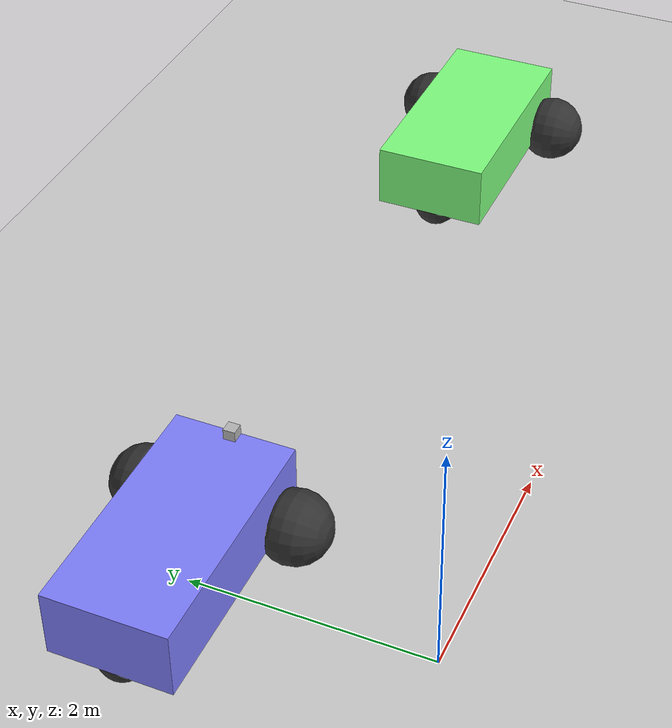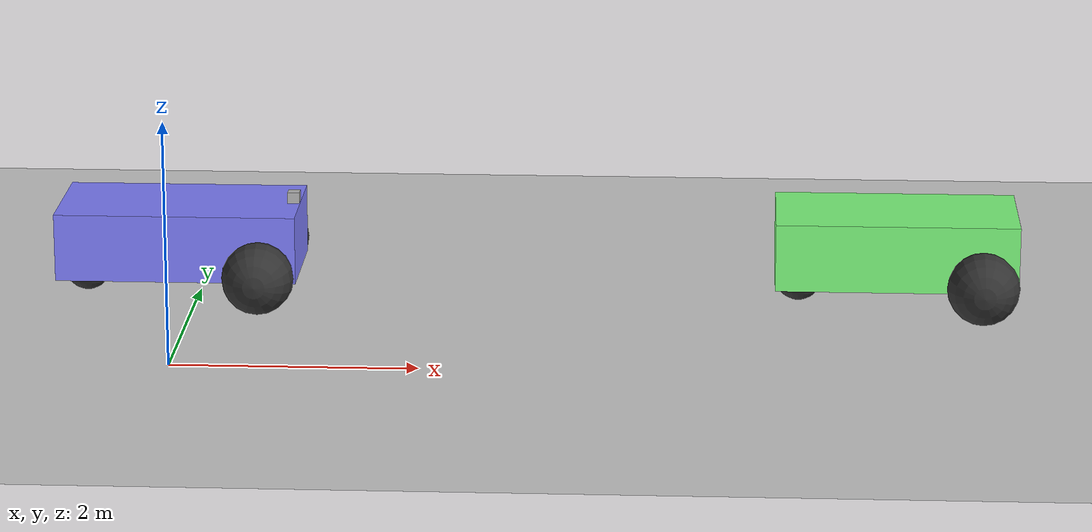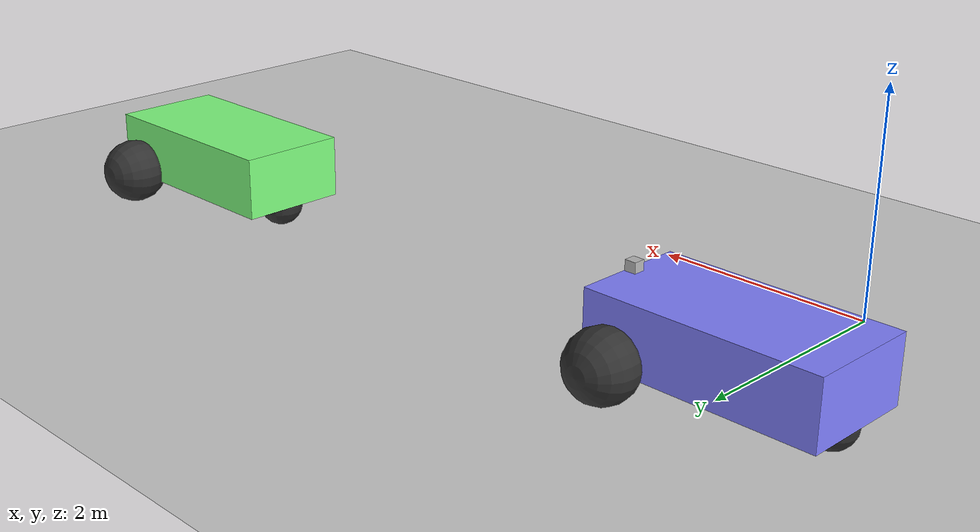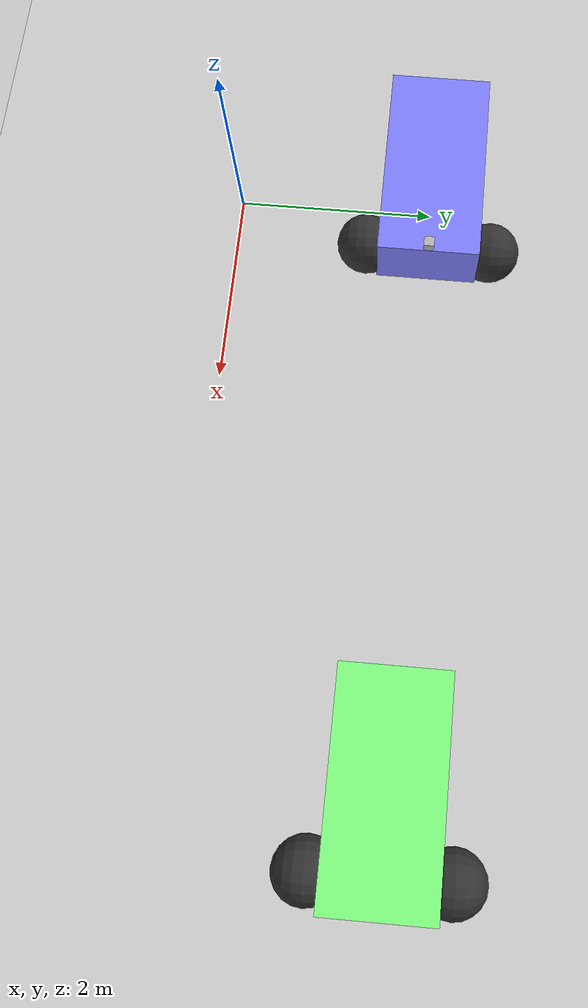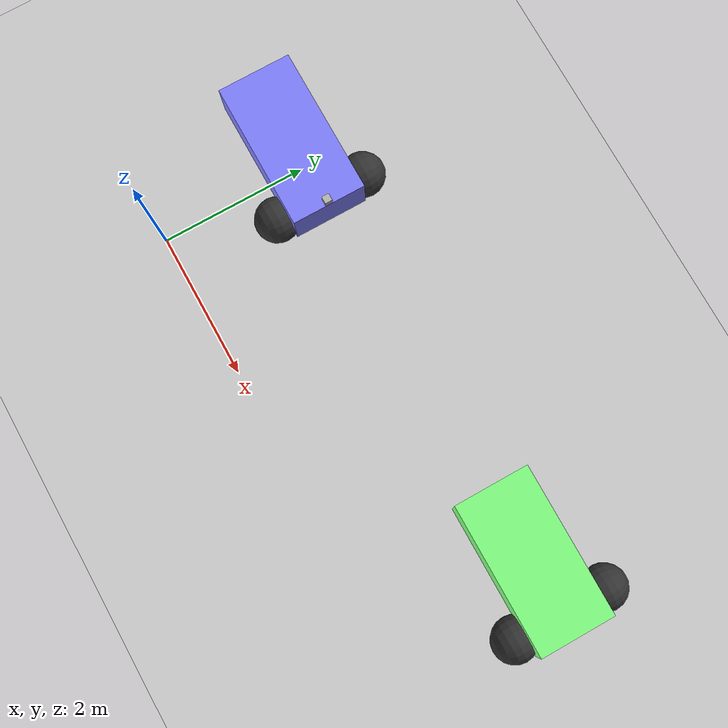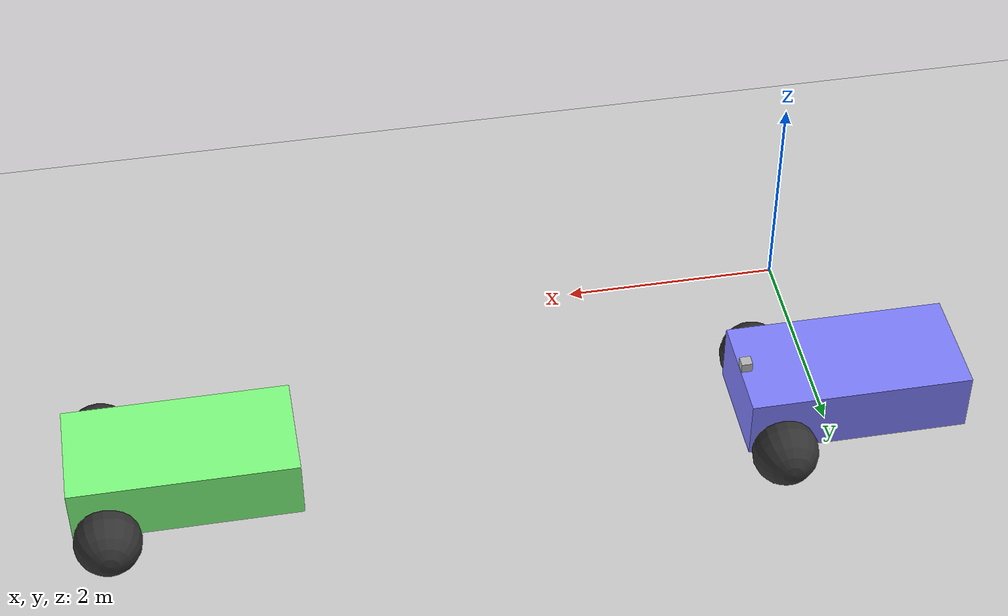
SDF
<?xml version="1.0" ?>
<sdf version="1.6">
  <world name="diff_drive">

    <physics name="1ms" type="ignored">
      <max_step_size>0.001</max_step_size>
      <real_time_factor>1.0</real_time_factor>
    </physics>
    <plugin
      filename="ignition-gazebo-physics-system"
      name="ignition::gazebo::systems::Physics">
    </plugin>
    <plugin
      filename="libignition-gazebo-sensors-system.so"
      name="ignition::gazebo::systems::Sensors">
      <render_engine>ogre2</render_engine>
    </plugin>
    <plugin
      filename="ignition-gazebo-user-commands-system"
      name="ignition::gazebo::systems::UserCommands">
    </plugin>
    <plugin
      filename="ignition-gazebo-scene-broadcaster-system"
      name="ignition::gazebo::systems::SceneBroadcaster">
    </plugin>

    <gui fullscreen="0">

      <!-- 3D scene -->
      <plugin filename="MinimalScene" name="3D View">
        <ignition-gui>
          <title>3D View</title>
          <property type="bool" key="showTitleBar">false</property>
          <property type="string" key="state">docked</property>
        </ignition-gui>

        <engine>ogre2</engine>
        <scene>scene</scene>
        <ambient_light>0.4 0.4 0.4</ambient_light>
        <background_color>0.8 0.8 0.8</background_color>
        <camera_pose>-6 0 6 0 0.5 0</camera_pose>
      </plugin>

      <!-- Plugins that add functionality to the scene -->
      <plugin filename="EntityContextMenuPlugin" name="Entity context menu">
        <ignition-gui>
          <property key="state" type="string">floating</property>
          <property key="width" type="double">5</property>
          <property key="height" type="double">5</property>
          <property key="showTitleBar" type="bool">false</property>
        </ignition-gui>
      </plugin>
      <plugin filename="GzSceneManager" name="Scene Manager">
        <ignition-gui>
          <property key="resizable" type="bool">false</property>
          <property key="width" type="double">5</property>
          <property key="height" type="double">5</property>
          <property key="state" type="string">floating</property>
          <property key="showTitleBar" type="bool">false</property>
        </ignition-gui>
      </plugin>
      <plugin filename="InteractiveViewControl" name="Interactive view control">
        <ignition-gui>
          <property key="resizable" type="bool">false</property>
          <property key="width" type="double">5</property>
          <property key="height" type="double">5</property>
          <property key="state" type="string">floating</property>
          <property key="showTitleBar" type="bool">false</property>
        </ignition-gui>
      </plugin>
      <plugin filename="CameraTracking" name="Camera Tracking">
        <ignition-gui>
          <property key="resizable" type="bool">false</property>
          <property key="width" type="double">5</property>
          <property key="height" type="double">5</property>
          <property key="state" type="string">floating</property>
          <property key="showTitleBar" type="bool">false</property>
        </ignition-gui>
      </plugin>
      <!-- World control -->
      <plugin filename="WorldControl" name="World control">
        <ignition-gui>
          <title>World control</title>
          <property type="bool" key="showTitleBar">false</property>
          <property type="bool" key="resizable">false</property>
          <property type="double" key="height">72</property>
          <property type="double" key="width">121</property>
          <property type="double" key="z">1</property>

          <property type="string" key="state">floating</property>
          <anchors target="3D View">
            <line own="left" target="left"/>
            <line own="bottom" target="bottom"/>
          </anchors>
        </ignition-gui>

        <play_pause>true</play_pause>
        <step>true</step>
        <start_paused>true</start_paused>
        <use_event>true</use_event>

      </plugin>

      <!-- World statistics -->
      <plugin filename="WorldStats" name="World stats">
        <ignition-gui>
          <title>World stats</title>
          <property type="bool" key="showTitleBar">false</property>
          <property type="bool" key="resizable">false</property>
          <property type="double" key="height">110</property>
          <property type="double" key="width">290</property>
          <property type="double" key="z">1</property>

          <property type="string" key="state">floating</property>
          <anchors target="3D View">
            <line own="right" target="right"/>
            <line own="bottom" target="bottom"/>
          </anchors>
        </ignition-gui>

        <sim_time>true</sim_time>
        <real_time>true</real_time>
        <real_time_factor>true</real_time_factor>
        <iterations>true</iterations>
      </plugin>

      <plugin filename="VisualizeLidar" name="Visualize Lidar">
      </plugin>

      <!-- Inspector -->
      <plugin filename="ComponentInspector" name="Component inspector">
        <ignition-gui>
          <property type="string" key="state">docked</property>
        </ignition-gui>
      </plugin>

      <!-- Entity tree -->
      <plugin filename="EntityTree" name="Entity tree">
        <ignition-gui>
          <property type="string" key="state">docked</property>
        </ignition-gui>
      </plugin>
    </gui>

    <light type="directional" name="sun">
      <cast_shadows>true</cast_shadows>
      <pose>0 0 10 0 0 0</pose>
      <diffuse>1 1 1 1</diffuse>
      <specular>0.5 0.5 0.5 1</specular>
      <attenuation>
        <range>1000</range>
        <constant>0.9</constant>
        <linear>0.01</linear>
        <quadratic>0.001</quadratic>
      </attenuation>
      <direction>-0.5 0.1 -0.9</direction>
    </light>

    <model name="ground_plane">
      <static>true</static>
      <link name="link">
        <collision name="collision">
          <geometry>
            <plane>
              <normal>0 0 1</normal>
              <size>100 100</size>
            </plane>
          </geometry>
        </collision>
        <visual name="visual">
          <geometry>
            <plane>
              <normal>0 0 1</normal>
              <size>100 100</size>
            </plane>
          </geometry>
          <material>
            <ambient>0.8 0.8 0.8 1</ambient>
            <diffuse>0.8 0.8 0.8 1</diffuse>
            <specular>0.8 0.8 0.8 1</specular>
          </material>
        </visual>
      </link>
    </model>

    <model name='vehicle_blue'>
      <pose>0.0 2.0 0.325 0 0 0.0</pose>
      <link name='chassis'>
        <pose>-0.151427 -0 0.175 0 -0 0</pose>
        <inertial>
          <mass>1.14395</mass>
          <inertia>
            <ixx>0.126164</ixx>
            <ixy>0</ixy>
            <ixz>0</ixz>
            <iyy>0.416519</iyy>
            <iyz>0</iyz>
            <izz>0.481014</izz>
          </inertia>
        </inertial>
        <visual name='visual'>
          <geometry>
            <box>
              <size>2.01142 1 0.568726</size>
            </box>
          </geometry>
          <material>
            <ambient>0.5 0.5 1.0 1</ambient>
            <diffuse>0.5 0.5 1.0 1</diffuse>
            <specular>0.0 0.0 1.0 1</specular>
          </material>
        </visual>
        <collision name='collision'>
          <geometry>
            <box>
              <size>2.01142 1 0.568726</size>
            </box>
          </geometry>
        </collision>
      </link>

      <link name="lidar_link">
        <pose>0.8 0 0.5 0 0 0</pose>
        <inertial>
          <mass>0.1</mass>
          <inertia>
            <ixx>0.000166667</ixx>
            <iyy>0.000166667</iyy>
            <izz>0.000166667</izz>
          </inertia>
        </inertial>
        <collision name="collision">
          <geometry>
            <box>
              <size>0.1 0.1 0.1</size>
            </box>
          </geometry>
        </collision>
        <visual name="visual">
          <geometry>
            <box>
              <size>0.1 0.1 0.1</size>
            </box>
          </geometry>
        </visual>
        <sensor name='gpu_lidar' type='gpu_lidar'>
        <pose>0 0 0 0 0 0</pose>
          <topic>vehicle_blue_lidar</topic>
          <update_rate>10</update_rate>
          <lidar>
            <scan>
              <horizontal>
                <samples>640</samples>
                <resolution>1</resolution>
                <min_angle>-0.4</min_angle>
                <max_angle>0.4</max_angle>
              </horizontal>
              <vertical>
                <samples>8</samples>
                <resolution>1</resolution>
                <min_angle>-0.1</min_angle>
                <max_angle>0.01</max_angle>
              </vertical>
            </scan>
            <range>
              <min>0.1</min>
              <max>10.0</max>
              <resolution>0.01</resolution>
            </range>
          </lidar>
          <alwaysOn>1</alwaysOn>
          <visualize>true</visualize>
        </sensor>
      </link>

      <link name='left_wheel'>
        <pose>0.554283 0.625029 -0.025 -1.5707 0 0</pose>
        <inertial>
          <mass>2</mass>
          <inertia>
            <ixx>0.145833</ixx>
            <ixy>0</ixy>
            <ixz>0</ixz>
            <iyy>0.145833</iyy>
            <iyz>0</iyz>
            <izz>0.125</izz>
          </inertia>
        </inertial>
        <visual name='visual'>
          <geometry>
            <sphere>
              <radius>0.3</radius>
            </sphere>
          </geometry>
          <material>
            <ambient>0.2 0.2 0.2 1</ambient>
            <diffuse>0.2 0.2 0.2 1</diffuse>
            <specular>0.2 0.2 0.2 1</specular>
          </material>
        </visual>
        <collision name='collision'>
          <geometry>
            <sphere>
              <radius>0.3</radius>
            </sphere>
          </geometry>
        </collision>
      </link>

      <link name='right_wheel'>
        <pose>0.554282 -0.625029 -0.025 -1.5707 0 0</pose>
        <inertial>
          <mass>2</mass>
          <inertia>
            <ixx>0.145833</ixx>
            <ixy>0</ixy>
            <ixz>0</ixz>
            <iyy>0.145833</iyy>
            <iyz>0</iyz>
            <izz>0.125</izz>
          </inertia>
        </inertial>
        <visual name='visual'>
          <geometry>
            <sphere>
              <radius>0.3</radius>
            </sphere>
          </geometry>
          <material>
            <ambient>0.2 0.2 0.2 1</ambient>
            <diffuse>0.2 0.2 0.2 1</diffuse>
            <specular>0.2 0.2 0.2 1</specular>
          </material>
        </visual>
        <collision name='collision'>
          <geometry>
            <sphere>
              <radius>0.3</radius>
            </sphere>
          </geometry>
        </collision>
      </link>

      <link name='caster'>
        <pose>-0.957138 -0 -0.125 0 -0 0</pose>
        <inertial>
          <mass>1</mass>
          <inertia>
            <ixx>0.1</ixx>
            <ixy>0</ixy>
            <ixz>0</ixz>
            <iyy>0.1</iyy>
            <iyz>0</iyz>
            <izz>0.1</izz>
          </inertia>
        </inertial>
        <visual name='visual'>
          <geometry>
            <sphere>
              <radius>0.2</radius>
            </sphere>
          </geometry>
          <material>
            <ambient>0.2 0.2 0.2 1</ambient>
            <diffuse>0.2 0.2 0.2 1</diffuse>
            <specular>0.2 0.2 0.2 1</specular>
          </material>
        </visual>
        <collision name='collision'>
          <geometry>
            <sphere>
              <radius>0.2</radius>
            </sphere>
          </geometry>
        </collision>
      </link>

      <joint name='lidar_sensor_joint' type='fixed'>
        <parent>chassis</parent>
        <child>lidar_link</child>
      </joint>

      <joint name='left_wheel_joint' type='revolute'>
        <parent>chassis</parent>
        <child>left_wheel</child>
        <axis>
          <xyz>0 0 1</xyz>
          <limit>
            <lower>-1.79769e+308</lower>
            <upper>1.79769e+308</upper>
          </limit>
        </axis>
      </joint>

      <joint name='right_wheel_joint' type='revolute'>
        <parent>chassis</parent>
        <child>right_wheel</child>
        <axis>
          <xyz>0 0 1</xyz>
          <limit>
            <lower>-1.79769e+308</lower>
            <upper>1.79769e+308</upper>
          </limit>
        </axis>
      </joint>

      <joint name='caster_wheel' type='ball'>
        <parent>chassis</parent>
        <child>caster</child>
      </joint>

      <plugin
        filename="ignition-gazebo-diff-drive-system"
        name="ignition::gazebo::systems::DiffDrive">
        <left_joint>left_wheel_joint</left_joint>
        <right_joint>right_wheel_joint</right_joint>
        <wheel_separation>1.25</wheel_separation>
        <wheel_radius>0.3</wheel_radius>
        <odom_publish_frequency>1</odom_publish_frequency>
        <max_linear_acceleration>1</max_linear_acceleration>
        <min_linear_acceleration>-1</min_linear_acceleration>
        <max_angular_acceleration>2</max_angular_acceleration>
        <min_angular_acceleration>-2</min_angular_acceleration>
        <max_linear_velocity>0.5</max_linear_velocity>
        <min_linear_velocity>-0.5</min_linear_velocity>
        <max_angular_velocity>1</max_angular_velocity>
        <min_angular_velocity>-1</min_angular_velocity>
      </plugin>

    </model>

    <model name='vehicle_green'>
      <pose>6 2 0.325 0 -0 0</pose>

      <link name='chassis'>
        <pose>-0.151427 -0 0.175 0 -0 0</pose>
        <inertial>
          <mass>1.14395</mass>
          <inertia>
            <ixx>0.126164</ixx>
            <ixy>0</ixy>
            <ixz>0</ixz>
            <iyy>0.416519</iyy>
            <iyz>0</iyz>
            <izz>0.481014</izz>
          </inertia>
        </inertial>
        <visual name='visual'>
          <geometry>
            <box>
              <size>2.01142 1 0.568726</size>
            </box>
          </geometry>
          <material>
            <ambient>0.5 1.0 0.5 1</ambient>
            <diffuse>0.5 1.0 0.5 1</diffuse>
            <specular>0.0 1.0 0.0 1</specular>
          </material>
        </visual>
        <collision name='collision'>
          <geometry>
            <box>
              <size>2.01142 1 0.568726</size>
            </box>
          </geometry>
        </collision>
      </link>

      <link name='left_wheel'>
        <pose>0.554283 0.625029 -0.025 -1.5707 0 0</pose>
        <inertial>
          <mass>2</mass>
          <inertia>
            <ixx>0.145833</ixx>
            <ixy>0</ixy>
            <ixz>0</ixz>
            <iyy>0.145833</iyy>
            <iyz>0</iyz>
            <izz>0.125</izz>
          </inertia>
        </inertial>
        <visual name='visual'>
          <geometry>
            <sphere>
              <radius>0.3</radius>
            </sphere>
          </geometry>
          <material>
            <ambient>0.2 0.2 0.2 1</ambient>
            <diffuse>0.2 0.2 0.2 1</diffuse>
            <specular>0.2 0.2 0.2 1</specular>
          </material>
        </visual>
        <collision name='collision'>
          <geometry>
            <sphere>
              <radius>0.3</radius>
            </sphere>
          </geometry>
        </collision>
      </link>

      <link name='right_wheel'>
        <pose>0.554282 -0.625029 -0.025 -1.5707 0 0</pose>
        <inertial>
          <mass>2</mass>
          <inertia>
            <ixx>0.145833</ixx>
            <ixy>0</ixy>
            <ixz>0</ixz>
            <iyy>0.145833</iyy>
            <iyz>0</iyz>
            <izz>0.125</izz>
          </inertia>
        </inertial>
        <visual name='visual'>
          <geometry>
            <sphere>
              <radius>0.3</radius>
            </sphere>
          </geometry>
          <material>
            <ambient>0.2 0.2 0.2 1</ambient>
            <diffuse>0.2 0.2 0.2 1</diffuse>
            <specular>0.2 0.2 0.2 1</specular>
          </material>
        </visual>
        <collision name='collision'>
          <geometry>
            <sphere>
              <radius>0.3</radius>
            </sphere>
          </geometry>
        </collision>
      </link>

      <link name='caster'>
        <pose>-0.957138 -0 -0.125 0 -0 0</pose>
        <inertial>
          <mass>1</mass>
          <inertia>
            <ixx>0.1</ixx>
            <ixy>0</ixy>
            <ixz>0</ixz>
            <iyy>0.1</iyy>
            <iyz>0</iyz>
            <izz>0.1</izz>
          </inertia>
        </inertial>
        <visual name='visual'>
          <geometry>
            <sphere>
              <radius>0.2</radius>
            </sphere>
          </geometry>
          <material>
            <ambient>0.2 0.2 0.2 1</ambient>
            <diffuse>0.2 0.2 0.2 1</diffuse>
            <specular>0.2 0.2 0.2 1</specular>
          </material>
        </visual>
        <collision name='collision'>
          <geometry>
            <sphere>
              <radius>0.2</radius>
            </sphere>
          </geometry>
        </collision>
      </link>

      <joint name='left_wheel_joint' type='revolute'>
        <parent>chassis</parent>
        <child>left_wheel</child>
        <axis>
          <xyz>0 0 1</xyz>
          <limit>
            <lower>-1.79769e+308</lower>
            <upper>1.79769e+308</upper>
          </limit>
        </axis>
      </joint>

      <joint name='right_wheel_joint' type='revolute'>
        <parent>chassis</parent>
        <child>right_wheel</child>
        <axis>
          <xyz>0 0 1</xyz>
          <limit>
            <lower>-1.79769e+308</lower>
            <upper>1.79769e+308</upper>
          </limit>
        </axis>
      </joint>

      <joint name='caster_wheel' type='ball'>
        <parent>chassis</parent>
        <child>caster</child>
      </joint>

      <plugin
        filename="ignition-gazebo-diff-drive-system"
        name="ignition::gazebo::systems::DiffDrive">
        <left_joint>left_wheel_joint</left_joint>
        <right_joint>right_wheel_joint</right_joint>
        <wheel_separation>1.25</wheel_separation>
        <wheel_radius>0.3</wheel_radius>
        <max_linear_acceleration>1</max_linear_acceleration>
        <min_linear_acceleration>-1</min_linear_acceleration>
        <max_angular_acceleration>2</max_angular_acceleration>
        <min_angular_acceleration>-2</min_angular_acceleration>
        <max_linear_velocity>0.5</max_linear_velocity>
        <min_linear_velocity>-0.5</min_linear_velocity>
        <max_angular_velocity>1</max_angular_velocity>
        <min_angular_velocity>-1</min_angular_velocity>
      </plugin>

    </model>

  </world>
</sdf>
